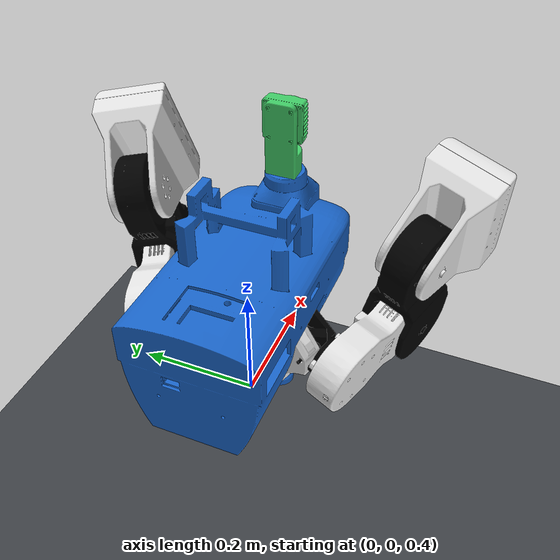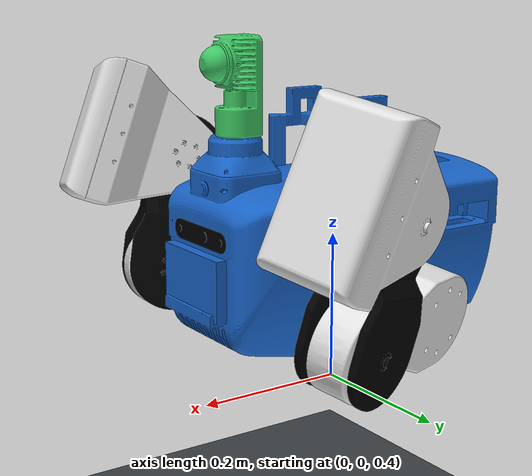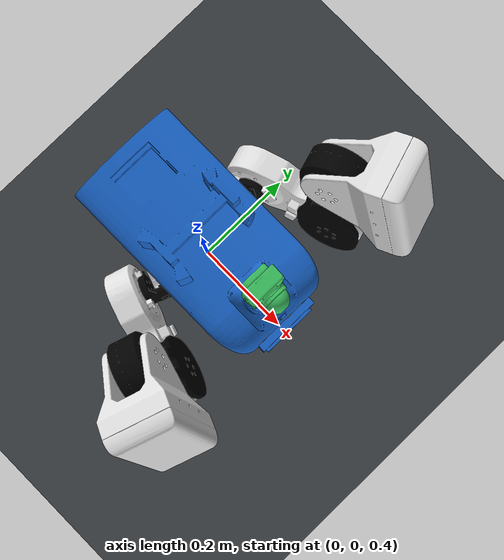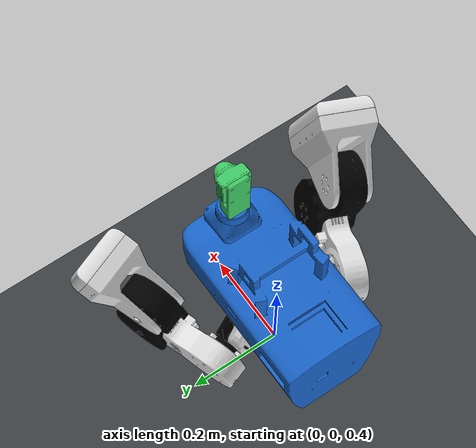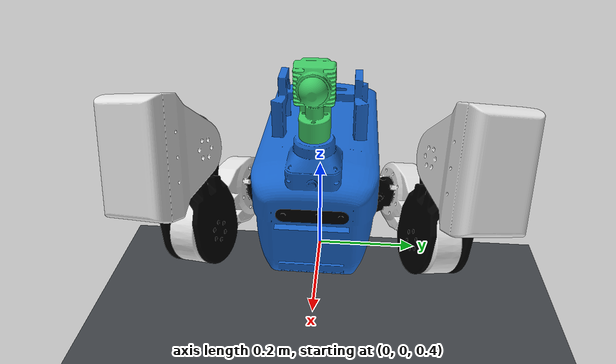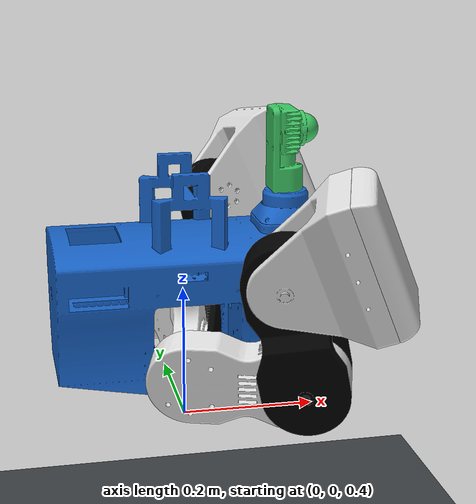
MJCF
<?xml version='1.0' encoding='utf-8'?>
<mujoco model="buaa_q1_v1">
  <compiler angle="radian" meshdir="../meshes" autolimits="true" />
  <option timestep="0.001" iterations="50" solver="Newton" />
  <asset>
    <texture name="ground_tex" type="2d" builtin="checker" width="512" height="512" rgb1="0.32 0.34 0.36" rgb2="0.16 0.17 0.18" />
    <material name="ground_mat" texture="ground_tex" texrepeat="40 40" reflectance="0.05" />
    <material name="blue" rgba="0.1 0.4 0.8 1" />
    <material name="white" rgba="0.9 0.9 0.9 1" />
    <material name="black" rgba="0 0 0 1" />
    <material name="green" rgba="0.25 0.8 0.4 1" />
    <mesh name="base_link" file="base_link.STL" />
    <mesh name="left1" file="left1.STL" />
    <mesh name="left2" file="left2.STL" />
    <mesh name="left3" file="left3.STL" />
    <mesh name="left4" file="left4.STL" />
    <mesh name="left5" file="left5.STL" />
    <mesh name="right1" file="right1.STL" />
    <mesh name="right2" file="right2.STL" />
    <mesh name="right3" file="right3.STL" />
    <mesh name="right4" file="right4.STL" />
    <mesh name="right5" file="right5.STL" />
    <mesh name="lidar" file="lidar.STL" />
    <mesh name="realsense" file="realsense.STL" />
  </asset>
  <worldbody>
    <light name="key_light" pos="2 -2 5" dir="-0.3 0.3 -1" directional="true" diffuse="0.85 0.85 0.85" specular="0.25 0.25 0.25" castshadow="true" />
    <light name="fill_light" pos="-2 1 3" dir="0.4 -0.2 -1" directional="true" diffuse="0.35 0.38 0.42" specular="0.05 0.05 0.05" castshadow="false" />
    <geom name="ground" type="plane" size="100 100 0.01" friction="1.0 0.8 0.5" material="ground_mat" contype="1" conaffinity="1" />
    <body name="base_link" pos="0 0 0.45">
      <freejoint name="floating_base" />
      <inertial mass="6.40085835" pos="-0.01158260 0.00000597 0.14631222" fullinertia="0.04967319 0.13479794 0.11744051 -0.00000038 -0.01935371 -0.00002794" />
      <geom type="mesh" mesh="base_link" contype="0" conaffinity="0" material="blue" />
      <site name="base_imu" pos="0 0 0" size="0.005" />
      <body name="hip_yaw_l" pos="0 0.055 0.0861">
        <inertial mass="0.924966309836361" pos="-0.000221171408633571 0.000835436588466555 0.0255560756676425" fullinertia="0.00251932 0.00224984 0.00059590 0.00009795 0.00000053 0.00002942" />
        <geom type="mesh" mesh="left1" contype="0" conaffinity="0" pos="0 0 0" material="white" />
        <joint name="hip_yaw_l" type="hinge" axis="0 0 1" limited="true" range="-0.4537856055 0" frictionloss="0.01" />
        <body name="hip_roll_l" pos="0.021165 0.063656 0.0021">
          <inertial mass="0.336643013680241" pos="-0.0274911987178704 0.0197664676440548 -0.00512348096800992" fullinertia="0.00051358 0.00027085 0.00055789 0.00018525 -0.00003652 0.00006460" />
          <geom type="mesh" mesh="left2" contype="0" conaffinity="0" pos="0 0 0" material="black" />
          <joint name="hip_roll_l" type="hinge" axis="0.95106 0.30902 0" limited="true" range="0 0.3714060648" frictionloss="0.07" />
          <body name="hip_pitch_l" pos="-0.040106 0.045768 -0.010506">
            <inertial mass="1.08615270" pos="0.07571300 0.02157796 0.00060929" fullinertia="0.00190228 0.00732076 0.00717915 -0.00195647 0.00007908 -0.00013307" />
            <geom type="mesh" mesh="left3" contype="0" conaffinity="0" pos="0 0 0" material="white" />
            <joint name="hip_pitch_l" type="hinge" axis="-0.3037 0.9347 -0.18464" limited="true" range="0 3.094395102" frictionloss="0.03" />
            <body name="knee_pitch_l" pos="0.15027 0.048825 0">
              <inertial mass="0.96552306" pos="-0.01759815 0.00753399 0.08328469" fullinertia="0.00591962 0.00633182 0.00141719 0.00003208 0.00106872 -0.00059524" />
              <geom type="mesh" mesh="left4" contype="0" conaffinity="0" pos="0 0 0" material="black" />
              <joint name="knee_pitch_l" type="hinge" axis="0.3037 -0.9347 0.18464" limited="true" range="-3.490658504 0" frictionloss="0.01" />
              <body name="ankle_pitch_l" pos="-0.034971 0.018845 0.15292">
                <inertial mass="1.15884521" pos="0.06647366 0.02592624 0.02560674" fullinertia="0.0041618 0.00566982 0.00439805 -0.00065593 -0.00005476 -0.00035079" />
                <geom type="mesh" mesh="left5" contype="0" conaffinity="0" pos="0 0 0" material="white" />
                <geom type="mesh" mesh="left5" group="3" rgba="0.2 0.2 0.2 0" pos="0 0 0" />
                <joint name="ankle_pitch_l" type="hinge" axis="-0.3037 0.9347 -0.18464" limited="true" range="-2.617993878 0" frictionloss="0.01" />
              </body>
            </body>
          </body>
        </body>
      </body>
      <body name="hip_yaw_r" pos="0 -0.055 0.0861">
        <inertial mass="0.92496577" pos="0.00091922 -0.00120453 0.02555592" fullinertia="0.00251891 0.00225164 0.00059728 -0.00009831 0.00002528 -0.00003738" />
        <geom type="mesh" mesh="right1" contype="0" conaffinity="0" pos="0 0 0" material="white" />
        <joint name="hip_yaw_r" type="hinge" axis="0 0 1" limited="true" range="0 0.4537856055" />
        <body name="hip_roll_r" pos="0.023067 -0.064274 0.0021">
          <inertial mass="0.33664269" pos="-0.0274911769591385 -0.0197664945674842 -0.00512347401957491" fullinertia="0.00051357 0.00027085 0.00055789 -0.00018525 -0.00003652 -0.00006460" />
          <geom type="mesh" mesh="right2" contype="0" conaffinity="0" pos="0 0 0" material="black" />
          <joint name="hip_roll_r" type="hinge" axis="0.95106 -0.30902 0" limited="true" range="-0.3714060648 0" frictionloss="0.07" />
          <body name="hip_pitch_r" pos="-0.040015 -0.045488 -0.01045">
            <inertial mass="1.08615270" pos="0.075622041595536 -0.0218579165663489 0.000551361994713465" fullinertia="0.00190228 0.00732078 0.00717914 0.00195646 0.00007916 0.00013303" />
            <geom type="mesh" mesh="right3" contype="0" conaffinity="0" pos="0 0 0" material="white" />
            <joint name="hip_pitch_r" type="hinge" axis="-0.3037 -0.9347 -0.18464" limited="true" range="-3.104395102 0" frictionloss="0.03" />
            <body name="knee_pitch_r" pos="0.15027 -0.048825 0">
              <inertial mass="0.96552304" pos="-0.0176878976892493 -0.00781487379967322 0.0832294573868453" fullinertia="0.00591971 0.00633182 0.00141715 -0.00003206 0.00106860 0.00059529" />
              <geom type="mesh" mesh="right4" contype="0" conaffinity="0" pos="0 0 0" material="black" />
              <joint name="knee_pitch_r" type="hinge" axis="0.3037 0.9347 0.18464" limited="true" range="0 3.490658504" frictionloss="0.01" />
              <body name="ankle_pitch_r" pos="-0.035063 -0.019126 0.15287">
                <inertial mass="1.15884521" pos="0.06647359 -0.02592625 0.02560691" fullinertia="0.0041618 0.00566982 0.00439804 0.00065593 -0.00005477 0.0003508" />
                <geom type="mesh" mesh="right5" contype="0" conaffinity="0" pos="0 0 0" material="white" />
                <geom type="mesh" mesh="right5" group="3" rgba="0.2 0.2 0.2 0" pos="0 0 0" />
                <joint name="ankle_pitch_r" type="hinge" axis="-0.3037 -0.9347 -0.18464" limited="true" range="0 2.617993878" frictionloss="0.01" />
              </body>
            </body>
          </body>
        </body>
      </body>
      <body name="lidar" pos="0.154 0 0.294">
        <inertial mass="0.308400019417121" pos="0.0046418382681748 5.43438209894845E-06 0.0595974876053534" fullinertia="0.00020460 0.00022004 0.00015518 0.00000003 -0.00001318 0.0" />
        <geom type="mesh" mesh="lidar" contype="0" conaffinity="0" pos="0 0 0" material="green" />
      </body>
      <body name="imu_in_torso" pos="0.207 0 0.17525">
        <inertial mass="0.11729996" pos="-0.01250113 0.00004432 0.00000228" fullinertia="0.00014633 0.00001399 0.00014382 -0.00000007 0.0 0.00000001" />
        <geom type="mesh" mesh="realsense" contype="0" conaffinity="0" pos="0 0 0" material="black" />
      </body>
    </body>
  </worldbody>
  <actuator>
    <motor name="hip_yaw_l_motor" joint="hip_yaw_l" gear="1" ctrlrange="-20 20" ctrllimited="true" />
    <motor name="hip_roll_l_motor" joint="hip_roll_l" gear="1" ctrlrange="-20 20" ctrllimited="true" />
    <motor name="hip_pitch_l_motor" joint="hip_pitch_l" gear="1" ctrlrange="-20 20" ctrllimited="true" />
    <motor name="knee_pitch_l_motor" joint="knee_pitch_l" gear="1" ctrlrange="-20 20" ctrllimited="true" />
    <motor name="ankle_pitch_l_motor" joint="ankle_pitch_l" gear="1" ctrlrange="-20 20" ctrllimited="true" />
    <motor name="hip_yaw_r_motor" joint="hip_yaw_r" gear="1" ctrlrange="-20 20" ctrllimited="true" />
    <motor name="hip_roll_r_motor" joint="hip_roll_r" gear="1" ctrlrange="-20 20" ctrllimited="true" />
    <motor name="hip_pitch_r_motor" joint="hip_pitch_r" gear="1" ctrlrange="-20 20" ctrllimited="true" />
    <motor name="knee_pitch_r_motor" joint="knee_pitch_r" gear="1" ctrlrange="-20 20" ctrllimited="true" />
    <motor name="ankle_pitch_r_motor" joint="ankle_pitch_r" gear="1" ctrlrange="-20 20" ctrllimited="true" />
  </actuator>
  <sensor>
    <framequat name="base_quat" objtype="body" objname="base_link" />
    <gyro name="body_gyro" site="base_imu" />
  </sensor>
  <keyframe>
    <key name="default_pos" qpos="0 0 0.45 1 0 0 0 -0.36 0.18 2.35 -0.33 -0.77 0.36 -0.18 -2.35 0.33 0.77" />
  </keyframe>
</mujoco>
